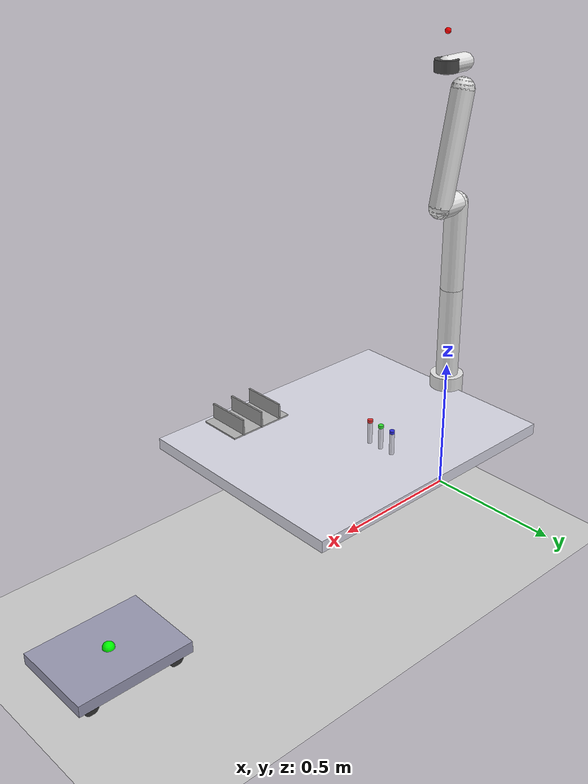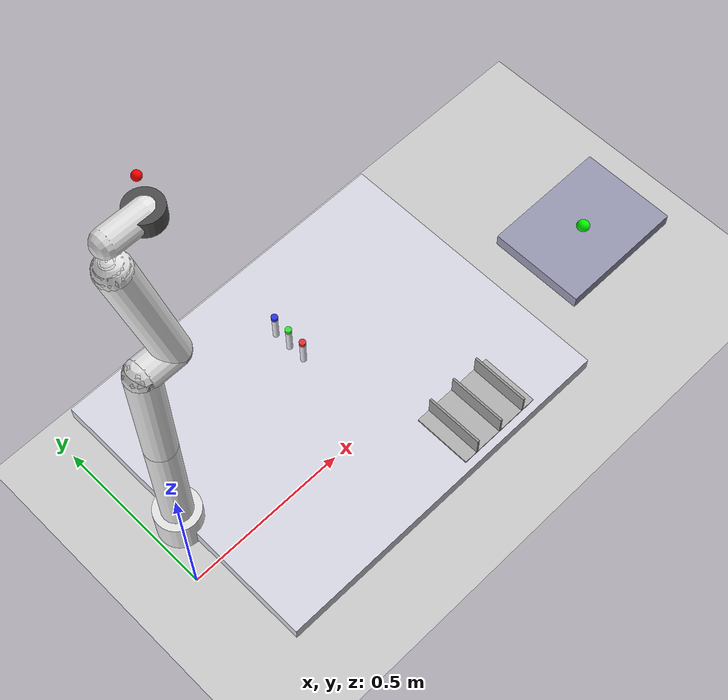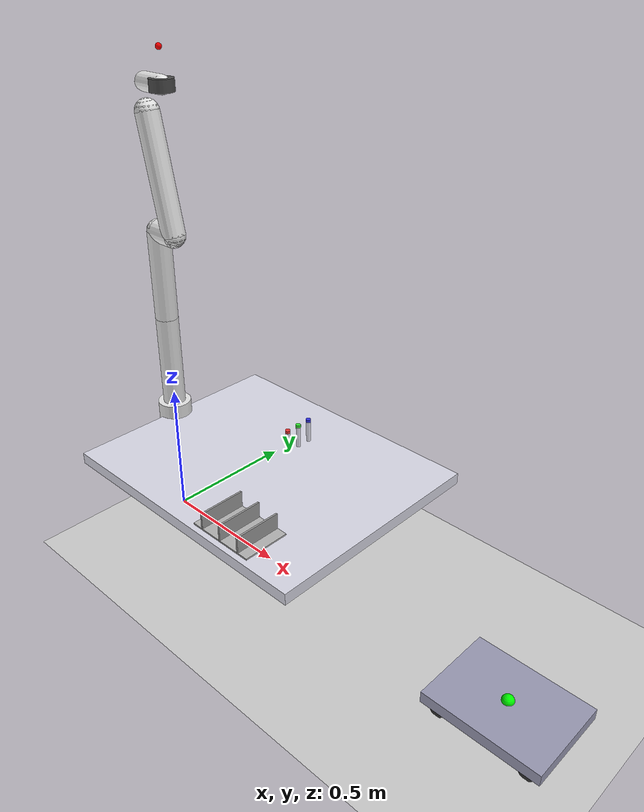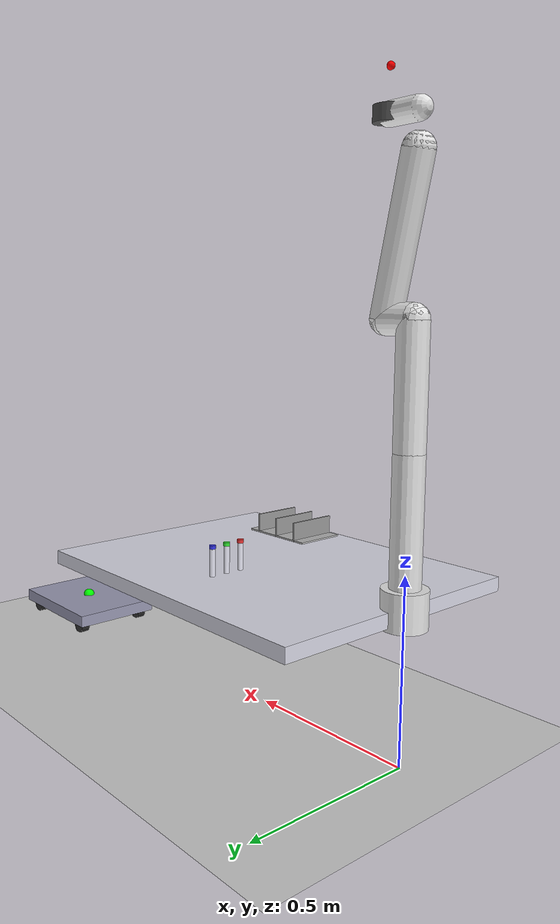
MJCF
<!--
  S3 Lab Custody scene for PSL-Bench.
  Panda arm (liquid handler) + transport cart (slide joints) + plate rack + 3 sample tubes.
  Frame convention: z-up, SI units (metres, radians, kg).
-->
<mujoco model="s3_lab_custody">
  <option timestep="0.002" gravity="0 0 -9.81"/>
  <compiler angle="radian"/>

  <default>
    <joint damping="1.0" armature="0.1"/>
    <geom condim="4" friction="1 0.5 0.01"/>
  </default>

  <worldbody>
    <!-- Ground plane -->
    <geom name="floor" type="plane" size="3 3 0.1" rgba="0.8 0.8 0.8 1"/>

    <!-- Lab bench -->
    <body name="lab_bench" pos="0.5 0 0.4">
      <geom name="bench_top" type="box" size="0.5 0.4 0.02" rgba="0.85 0.85 0.9 1" mass="15"/>
    </body>

    <!-- Panda arm base (liquid handler) -->
    <body name="panda_link0" pos="0 0 0.42">
      <geom name="link0_geom" type="cylinder" size="0.06 0.05" rgba="0.9 0.9 0.9 1" mass="2.0"/>
      <body name="panda_link1" pos="0 0 0.05">
        <joint name="joint_0" type="hinge" axis="0 0 1" range="-2.8973 2.8973" damping="10"/>
        <geom name="link1_geom" type="capsule" fromto="0 0 0 0 0 0.333" size="0.04" rgba="0.9 0.9 0.9 1" mass="2.0"/>
        <body name="panda_link2" pos="0 0 0.333">
          <joint name="joint_1" type="hinge" axis="0 1 0" range="-1.7628 1.7628" damping="10"/>
          <geom name="link2_geom" type="capsule" fromto="0 0 0 0 0 0.316" size="0.04" rgba="0.9 0.9 0.9 1" mass="2.0"/>
          <body name="panda_link3" pos="0 0 0.316">
            <joint name="joint_2" type="hinge" axis="0 0 1" range="-2.8973 2.8973" damping="10"/>
            <geom name="link3_geom" type="capsule" fromto="0 0 0 0.0825 0 0" size="0.04" rgba="0.9 0.9 0.9 1" mass="2.0"/>
            <body name="panda_link4" pos="0.0825 0 0">
              <joint name="joint_3" type="hinge" axis="0 -1 0" range="-3.0718 -0.0698" damping="10"/>
              <geom name="link4_geom" type="capsule" fromto="0 0 0 -0.0825 0 0.384" size="0.04" rgba="0.9 0.9 0.9 1" mass="2.0"/>
              <body name="panda_link5" pos="-0.0825 0 0.384">
                <joint name="joint_4" type="hinge" axis="0 0 1" range="-2.8973 2.8973" damping="10"/>
                <geom name="link5_geom" type="sphere" size="0.04" rgba="0.9 0.9 0.9 1" mass="1.0"/>
                <body name="panda_link6" pos="0 0 0.088">
                  <joint name="joint_5" type="hinge" axis="0 1 0" range="-0.0175 3.7525" damping="5"/>
                  <geom name="link6_geom" type="capsule" fromto="0 0 0 0.088 0 0" size="0.03" rgba="0.9 0.9 0.9 1" mass="1.0"/>
                  <body name="panda_link7" pos="0.088 0 0">
                    <joint name="joint_6" type="hinge" axis="0 0 1" range="-2.8973 2.8973" damping="2"/>
                    <geom name="link7_geom" type="cylinder" size="0.04 0.02" rgba="0.3 0.3 0.3 1" mass="0.5"/>
                    <site name="ee_site" pos="0 0 0.107" size="0.01" rgba="1 0 0 1"/>
                  </body>
                </body>
              </body>
            </body>
          </body>
        </body>
      </body>
    </body>

    <!-- Transport cart (slide joints on floor) -->
    <body name="cart_base_x" pos="1.5 0 0.05">
      <geom type="sphere" size="0.001" mass="1" rgba="0 0 0 0"/>
      <joint name="cart_slide_x" type="slide" axis="1 0 0" range="-3 3" damping="30"/>
      <body name="cart_base_y">
        <geom type="sphere" size="0.001" mass="1" rgba="0 0 0 0"/>
      <joint name="cart_slide_y" type="slide" axis="0 1 0" range="-3 3" damping="30"/>
        <geom name="cart_platform" type="box" size="0.2 0.15 0.02" rgba="0.6 0.6 0.7 1" mass="5.0"/>
        <geom name="cart_wheel_fl" type="cylinder" pos="0.15 0.12 -0.03" euler="1.5708 0 0" size="0.025 0.015" rgba="0.2 0.2 0.2 1" mass="0.2"/>
        <geom name="cart_wheel_fr" type="cylinder" pos="0.15 -0.12 -0.03" euler="1.5708 0 0" size="0.025 0.015" rgba="0.2 0.2 0.2 1" mass="0.2"/>
        <geom name="cart_wheel_rl" type="cylinder" pos="-0.15 0.12 -0.03" euler="1.5708 0 0" size="0.025 0.015" rgba="0.2 0.2 0.2 1" mass="0.2"/>
        <geom name="cart_wheel_rr" type="cylinder" pos="-0.15 -0.12 -0.03" euler="1.5708 0 0" size="0.025 0.015" rgba="0.2 0.2 0.2 1" mass="0.2"/>
        <site name="cart_center" pos="0 0 0.02" size="0.02" rgba="0 1 0 1"/>
      </body>
    </body>

    <!-- Plate rack -->
    <body name="plate_rack" pos="0.7 -0.3 0.42">
      <geom name="rack_base" type="box" size="0.12 0.08 0.005" rgba="0.7 0.7 0.7 1" mass="1.0"/>
      <geom name="rack_slot_1" type="box" pos="-0.08 0 0.03" size="0.003 0.08 0.03" rgba="0.6 0.6 0.6 1" mass="0.1"/>
      <geom name="rack_slot_2" type="box" pos="0 0 0.03" size="0.003 0.08 0.03" rgba="0.6 0.6 0.6 1" mass="0.1"/>
      <geom name="rack_slot_3" type="box" pos="0.08 0 0.03" size="0.003 0.08 0.03" rgba="0.6 0.6 0.6 1" mass="0.1"/>
    </body>

    <!-- Sample tube 1 (red cap) -->
    <body name="sample_tube_1" pos="0.5 0.1 0.46">
      <freejoint name="tube1_free"/>
      <geom name="tube1_body" type="cylinder" size="0.008 0.04" rgba="0.9 0.9 0.95 1" mass="0.02"/>
      <geom name="tube1_cap" type="cylinder" pos="0 0 0.042" size="0.009 0.005" rgba="0.9 0.2 0.2 1" mass="0.005"/>
    </body>

    <!-- Sample tube 2 (green cap) -->
    <body name="sample_tube_2" pos="0.5 0.15 0.46">
      <freejoint name="tube2_free"/>
      <geom name="tube2_body" type="cylinder" size="0.008 0.04" rgba="0.9 0.9 0.95 1" mass="0.02"/>
      <geom name="tube2_cap" type="cylinder" pos="0 0 0.042" size="0.009 0.005" rgba="0.2 0.9 0.2 1" mass="0.005"/>
    </body>

    <!-- Sample tube 3 (blue cap) -->
    <body name="sample_tube_3" pos="0.5 0.2 0.46">
      <freejoint name="tube3_free"/>
      <geom name="tube3_body" type="cylinder" size="0.008 0.04" rgba="0.9 0.9 0.95 1" mass="0.02"/>
      <geom name="tube3_cap" type="cylinder" pos="0 0 0.042" size="0.009 0.005" rgba="0.2 0.2 0.9 1" mass="0.005"/>
    </body>
  </worldbody>

  <actuator>
    <!-- Panda arm actuators -->
    <position name="act_joint_0" joint="joint_0" kp="1000"/>
    <position name="act_joint_1" joint="joint_1" kp="1000"/>
    <position name="act_joint_2" joint="joint_2" kp="1000"/>
    <position name="act_joint_3" joint="joint_3" kp="1000"/>
    <position name="act_joint_4" joint="joint_4" kp="1000"/>
    <position name="act_joint_5" joint="joint_5" kp="1000"/>
    <position name="act_joint_6" joint="joint_6" kp="1000"/>
    <!-- Cart actuators -->
    <position name="act_cart_x" joint="cart_slide_x" kp="300"/>
    <position name="act_cart_y" joint="cart_slide_y" kp="300"/>
  </actuator>

  <sensor>
    <!-- Panda arm sensors -->
    <jointpos name="jpos_0" joint="joint_0"/>
    <jointpos name="jpos_1" joint="joint_1"/>
    <jointpos name="jpos_2" joint="joint_2"/>
    <jointpos name="jpos_3" joint="joint_3"/>
    <jointpos name="jpos_4" joint="joint_4"/>
    <jointpos name="jpos_5" joint="joint_5"/>
    <jointpos name="jpos_6" joint="joint_6"/>
    <jointvel name="jvel_0" joint="joint_0"/>
    <jointvel name="jvel_1" joint="joint_1"/>
    <jointvel name="jvel_2" joint="joint_2"/>
    <jointvel name="jvel_3" joint="joint_3"/>
    <jointvel name="jvel_4" joint="joint_4"/>
    <jointvel name="jvel_5" joint="joint_5"/>
    <jointvel name="jvel_6" joint="joint_6"/>
    <framepos name="ee_pos" objtype="site" objname="ee_site"/>
    <framequat name="ee_quat" objtype="site" objname="ee_site"/>
    <!-- Cart sensors -->
    <jointpos name="cart_x" joint="cart_slide_x"/>
    <jointpos name="cart_y" joint="cart_slide_y"/>
  </sensor>
</mujoco>
